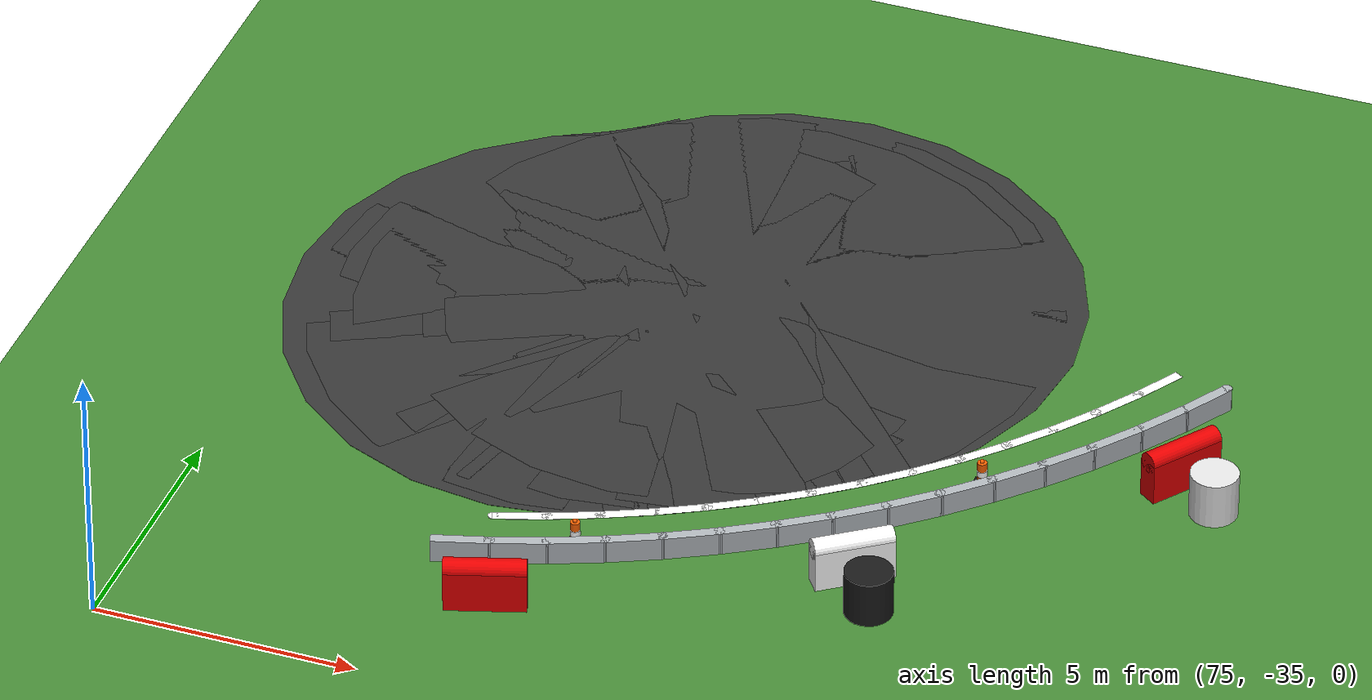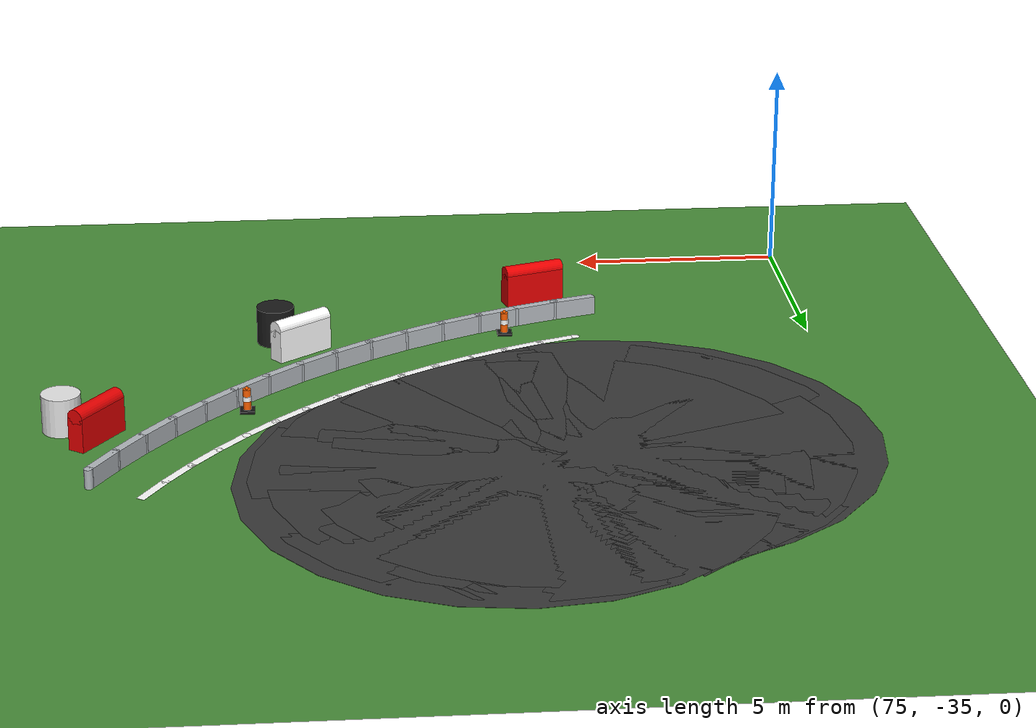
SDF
<sdf version="1.6">
 <world name="sem_silesia_ring_2026">
  <model name="ground_plane">
   <static>true</static>
   <link name="link">
    <collision name="collision">
     <geometry><plane><normal>0 0 1</normal><size>600 600</size></plane></geometry>
     <surface><friction><ode><mu>0.6</mu><mu2>0.6</mu2></ode></friction></surface>
    </collision>
    <visual name="visual">
     <geometry><plane><normal>0 0 1</normal><size>600 600</size></plane></geometry>
     <material><ambient>0.28 0.55 0.22 1</ambient><diffuse>0.28 0.55 0.22 1</diffuse></material>
    </visual>
   </link>
  </model>
  <model name="road_R_jnt13">
   <static>true</static>
   <pose>80.4796 -23.7349 0.0030 0 0 0</pose>
   <link name="link">
    <visual name="v">
     <geometry><cylinder><radius>6.0000</radius><length>0.0060</length></cylinder></geometry>
     <material><ambient>0.22 0.22 0.22 1</ambient><diffuse>0.22 0.22 0.22 1</diffuse></material>
    </visual>
    <collision name="c">
     <geometry><cylinder><radius>6.0000</radius><length>0.0060</length></cylinder></geometry>
     <surface><friction><ode><mu>0.9</mu><mu2>0.9</mu2></ode></friction></surface>
    </collision>
   </link>
  </model>
  <model name="road_R_s13">
   <static>true</static>
   <pose>80.6749 -23.6376 0.0030 0 0 0.4712</pose>
   <link name="link">
    <visual name="v">
     <geometry><box><size>0.6957 12.0000 0.0060</size></box></geometry>
     <material><ambient>0.22 0.22 0.22 1</ambient><diffuse>0.22 0.22 0.22 1</diffuse></material>
    </visual>
    <collision name="c">
     <geometry><box><size>0.6957 12.0000 0.0060</size></box></geometry>
     <surface><friction><ode><mu>0.9</mu><mu2>0.9</mu2></ode></friction></surface>
    </collision>
   </link>
  </model>
  <model name="road_R_jnt14">
   <static>true</static>
   <pose>80.8684 -23.5368 0.0030 0 0 0</pose>
   <link name="link">
    <visual name="v">
     <geometry><cylinder><radius>6.0000</radius><length>0.0060</length></cylinder></geometry>
     <material><ambient>0.22 0.22 0.22 1</ambient><diffuse>0.22 0.22 0.22 1</diffuse></material>
    </visual>
    <collision name="c">
     <geometry><cylinder><radius>6.0000</radius><length>0.0060</length></cylinder></geometry>
     <surface><friction><ode><mu>0.9</mu><mu2>0.9</mu2></ode></friction></surface>
    </collision>
   </link>
  </model>
  <model name="road_R_s14">
   <static>true</static>
   <pose>81.0601 -23.4327 0.0030 0 0 0.5061</pose>
   <link name="link">
    <visual name="v">
     <geometry><box><size>0.6957 12.0000 0.0060</size></box></geometry>
     <material><ambient>0.22 0.22 0.22 1</ambient><diffuse>0.22 0.22 0.22 1</diffuse></material>
    </visual>
    <collision name="c">
     <geometry><box><size>0.6957 12.0000 0.0060</size></box></geometry>
     <surface><friction><ode><mu>0.9</mu><mu2>0.9</mu2></ode></friction></surface>
    </collision>
   </link>
  </model>
  <model name="road_R_jnt15">
   <static>true</static>
   <pose>81.2500 -23.3253 0.0030 0 0 0</pose>
   <link name="link">
    <visual name="v">
     <geometry><cylinder><radius>6.0000</radius><length>0.0060</length></cylinder></geometry>
     <material><ambient>0.22 0.22 0.22 1</ambient><diffuse>0.22 0.22 0.22 1</diffuse></material>
    </visual>
    <collision name="c">
     <geometry><cylinder><radius>6.0000</radius><length>0.0060</length></cylinder></geometry>
     <surface><friction><ode><mu>0.9</mu><mu2>0.9</mu2></ode></friction></surface>
    </collision>
   </link>
  </model>
  <model name="road_R_s15">
   <static>true</static>
   <pose>81.4380 -23.2146 0.0030 0 0 0.5411</pose>
   <link name="link">
    <visual name="v">
     <geometry><box><size>0.6957 12.0000 0.0060</size></box></geometry>
     <material><ambient>0.22 0.22 0.22 1</ambient><diffuse>0.22 0.22 0.22 1</diffuse></material>
    </visual>
    <collision name="c">
     <geometry><box><size>0.6957 12.0000 0.0060</size></box></geometry>
     <surface><friction><ode><mu>0.9</mu><mu2>0.9</mu2></ode></friction></surface>
    </collision>
   </link>
  </model>
  <model name="road_R_jnt16">
   <static>true</static>
   <pose>81.6240 -23.1006 0.0030 0 0 0</pose>
   <link name="link">
    <visual name="v">
     <geometry><cylinder><radius>6.0000</radius><length>0.0060</length></cylinder></geometry>
     <material><ambient>0.22 0.22 0.22 1</ambient><diffuse>0.22 0.22 0.22 1</diffuse></material>
    </visual>
    <collision name="c">
     <geometry><cylinder><radius>6.0000</radius><length>0.0060</length></cylinder></geometry>
     <surface><friction><ode><mu>0.9</mu><mu2>0.9</mu2></ode></friction></surface>
    </collision>
   </link>
  </model>
  <model name="road_R_s16">
   <static>true</static>
   <pose>81.8080 -22.9834 0.0030 0 0 0.5760</pose>
   <link name="link">
    <visual name="v">
     <geometry><box><size>0.6957 12.0000 0.0060</size></box></geometry>
     <material><ambient>0.22 0.22 0.22 1</ambient><diffuse>0.22 0.22 0.22 1</diffuse></material>
    </visual>
    <collision name="c">
     <geometry><box><size>0.6957 12.0000 0.0060</size></box></geometry>
     <surface><friction><ode><mu>0.9</mu><mu2>0.9</mu2></ode></friction></surface>
    </collision>
   </link>
  </model>
  <model name="road_R_jnt17">
   <static>true</static>
   <pose>81.9899 -22.8630 0.0030 0 0 0</pose>
   <link name="link">
    <visual name="v">
     <geometry><cylinder><radius>6.0000</radius><length>0.0060</length></cylinder></geometry>
     <material><ambient>0.22 0.22 0.22 1</ambient><diffuse>0.22 0.22 0.22 1</diffuse></material>
    </visual>
    <collision name="c">
     <geometry><cylinder><radius>6.0000</radius><length>0.0060</length></cylinder></geometry>
     <surface><friction><ode><mu>0.9</mu><mu2>0.9</mu2></ode></friction></surface>
    </collision>
   </link>
  </model>
  <model name="road_R_s17">
   <static>true</static>
   <pose>82.1697 -22.7394 0.0030 0 0 0.6109</pose>
   <link name="link">
    <visual name="v">
     <geometry><box><size>0.6957 12.0000 0.0060</size></box></geometry>
     <material><ambient>0.22 0.22 0.22 1</ambient><diffuse>0.22 0.22 0.22 1</diffuse></material>
    </visual>
    <collision name="c">
     <geometry><box><size>0.6957 12.0000 0.0060</size></box></geometry>
     <surface><friction><ode><mu>0.9</mu><mu2>0.9</mu2></ode></friction></surface>
    </collision>
   </link>
  </model>
  <model name="road_R_jnt18">
   <static>true</static>
   <pose>82.3473 -22.6127 0.0030 0 0 0</pose>
   <link name="link">
    <visual name="v">
     <geometry><cylinder><radius>6.0000</radius><length>0.0060</length></cylinder></geometry>
     <material><ambient>0.22 0.22 0.22 1</ambient><diffuse>0.22 0.22 0.22 1</diffuse></material>
    </visual>
    <collision name="c">
     <geometry><cylinder><radius>6.0000</radius><length>0.0060</length></cylinder></geometry>
     <surface><friction><ode><mu>0.9</mu><mu2>0.9</mu2></ode></friction></surface>
    </collision>
   </link>
  </model>
  <model name="road_R_s18">
   <static>true</static>
   <pose>82.5227 -22.4829 0.0030 0 0 0.6458</pose>
   <link name="link">
    <visual name="v">
     <geometry><box><size>0.6957 12.0000 0.0060</size></box></geometry>
     <material><ambient>0.22 0.22 0.22 1</ambient><diffuse>0.22 0.22 0.22 1</diffuse></material>
    </visual>
    <collision name="c">
     <geometry><box><size>0.6957 12.0000 0.0060</size></box></geometry>
     <surface><friction><ode><mu>0.9</mu><mu2>0.9</mu2></ode></friction></surface>
    </collision>
   </link>
  </model>
  <model name="road_R_jnt19">
   <static>true</static>
   <pose>82.6958 -22.3501 0.0030 0 0 0</pose>
   <link name="link">
    <visual name="v">
     <geometry><cylinder><radius>6.0000</radius><length>0.0060</length></cylinder></geometry>
     <material><ambient>0.22 0.22 0.22 1</ambient><diffuse>0.22 0.22 0.22 1</diffuse></material>
    </visual>
    <collision name="c">
     <geometry><cylinder><radius>6.0000</radius><length>0.0060</length></cylinder></geometry>
     <surface><friction><ode><mu>0.9</mu><mu2>0.9</mu2></ode></friction></surface>
    </collision>
   </link>
  </model>
  <model name="road_R_s19">
   <static>true</static>
   <pose>82.8665 -22.2143 0.0030 0 0 0.6807</pose>
   <link name="link">
    <visual name="v">
     <geometry><box><size>0.6957 12.0000 0.0060</size></box></geometry>
     <material><ambient>0.22 0.22 0.22 1</ambient><diffuse>0.22 0.22 0.22 1</diffuse></material>
    </visual>
    <collision name="c">
     <geometry><box><size>0.6957 12.0000 0.0060</size></box></geometry>
     <surface><friction><ode><mu>0.9</mu><mu2>0.9</mu2></ode></friction></surface>
    </collision>
   </link>
  </model>
  <model name="road_R_jnt20">
   <static>true</static>
   <pose>83.0348 -22.0756 0.0030 0 0 0</pose>
   <link name="link">
    <visual name="v">
     <geometry><cylinder><radius>6.0000</radius><length>0.0060</length></cylinder></geometry>
     <material><ambient>0.22 0.22 0.22 1</ambient><diffuse>0.22 0.22 0.22 1</diffuse></material>
    </visual>
    <collision name="c">
     <geometry><cylinder><radius>6.0000</radius><length>0.0060</length></cylinder></geometry>
     <surface><friction><ode><mu>0.9</mu><mu2>0.9</mu2></ode></friction></surface>
    </collision>
   </link>
  </model>
  <model name="road_R_s20">
   <static>true</static>
   <pose>83.2007 -21.9339 0.0030 0 0 0.7156</pose>
   <link name="link">
    <visual name="v">
     <geometry><box><size>0.6957 12.0000 0.0060</size></box></geometry>
     <material><ambient>0.22 0.22 0.22 1</ambient><diffuse>0.22 0.22 0.22 1</diffuse></material>
    </visual>
    <collision name="c">
     <geometry><box><size>0.6957 12.0000 0.0060</size></box></geometry>
     <surface><friction><ode><mu>0.9</mu><mu2>0.9</mu2></ode></friction></surface>
    </collision>
   </link>
  </model>
  <model name="wl_Ro_jnt6">
   <static>true</static>
   <pose>80.6859 -29.9994 0.0050 0 0 0</pose>
   <link name="link">
    <visual name="v">
     <geometry><cylinder><radius>0.1000</radius><length>0.0040</length></cylinder></geometry>
     <material><ambient>1 1 1 1</ambient><diffuse>1 1 1 1</diffuse></material>
    </visual>
    <collision name="c">
     <geometry><cylinder><radius>0.1000</radius><length>0.0040</length></cylinder></geometry>
     <surface><friction><ode><mu>0.9</mu><mu2>0.9</mu2></ode></friction></surface>
    </collision>
   </link>
  </model>
  <model name="wl_Ro_s6">
   <static>true</static>
   <pose>81.1420 -29.8446 0.0050 0 0 0.3403</pose>
   <link name="link">
    <visual name="v">
     <geometry><box><size>1.0185 0.2000 0.0040</size></box></geometry>
     <material><ambient>1 1 1 1</ambient><diffuse>1 1 1 1</diffuse></material>
    </visual>
    <collision name="c">
     <geometry><box><size>1.0185 0.2000 0.0040</size></box></geometry>
     <surface><friction><ode><mu>0.9</mu><mu2>0.9</mu2></ode></friction></surface>
    </collision>
   </link>
  </model>
  <model name="wl_Ro_jnt7">
   <static>true</static>
   <pose>81.5940 -29.6779 0.0050 0 0 0</pose>
   <link name="link">
    <visual name="v">
     <geometry><cylinder><radius>0.1000</radius><length>0.0040</length></cylinder></geometry>
     <material><ambient>1 1 1 1</ambient><diffuse>1 1 1 1</diffuse></material>
    </visual>
    <collision name="c">
     <geometry><cylinder><radius>0.1000</radius><length>0.0040</length></cylinder></geometry>
     <surface><friction><ode><mu>0.9</mu><mu2>0.9</mu2></ode></friction></surface>
    </collision>
   </link>
  </model>
  <model name="wl_Ro_s7">
   <static>true</static>
   <pose>82.0414 -29.4994 0.0050 0 0 0.3927</pose>
   <link name="link">
    <visual name="v">
     <geometry><box><size>1.0185 0.2000 0.0040</size></box></geometry>
     <material><ambient>1 1 1 1</ambient><diffuse>1 1 1 1</diffuse></material>
    </visual>
    <collision name="c">
     <geometry><box><size>1.0185 0.2000 0.0040</size></box></geometry>
     <surface><friction><ode><mu>0.9</mu><mu2>0.9</mu2></ode></friction></surface>
    </collision>
   </link>
  </model>
  <model name="wl_Ro_jnt8">
   <static>true</static>
   <pose>82.4840 -29.3092 0.0050 0 0 0</pose>
   <link name="link">
    <visual name="v">
     <geometry><cylinder><radius>0.1000</radius><length>0.0040</length></cylinder></geometry>
     <material><ambient>1 1 1 1</ambient><diffuse>1 1 1 1</diffuse></material>
    </visual>
    <collision name="c">
     <geometry><cylinder><radius>0.1000</radius><length>0.0040</length></cylinder></geometry>
     <surface><friction><ode><mu>0.9</mu><mu2>0.9</mu2></ode></friction></surface>
    </collision>
   </link>
  </model>
  <model name="wl_Ro_s8">
   <static>true</static>
   <pose>82.9214 -29.1076 0.0050 0 0 0.4451</pose>
   <link name="link">
    <visual name="v">
     <geometry><box><size>1.0185 0.2000 0.0040</size></box></geometry>
     <material><ambient>1 1 1 1</ambient><diffuse>1 1 1 1</diffuse></material>
    </visual>
    <collision name="c">
     <geometry><box><size>1.0185 0.2000 0.0040</size></box></geometry>
     <surface><friction><ode><mu>0.9</mu><mu2>0.9</mu2></ode></friction></surface>
    </collision>
   </link>
  </model>
  <model name="wl_Ro_jnt9">
   <static>true</static>
   <pose>83.3534 -28.8945 0.0050 0 0 0</pose>
   <link name="link">
    <visual name="v">
     <geometry><cylinder><radius>0.1000</radius><length>0.0040</length></cylinder></geometry>
     <material><ambient>1 1 1 1</ambient><diffuse>1 1 1 1</diffuse></material>
    </visual>
    <collision name="c">
     <geometry><cylinder><radius>0.1000</radius><length>0.0040</length></cylinder></geometry>
     <surface><friction><ode><mu>0.9</mu><mu2>0.9</mu2></ode></friction></surface>
    </collision>
   </link>
  </model>
  <model name="wl_Ro_s9">
   <static>true</static>
   <pose>83.7797 -28.6702 0.0050 0 0 0.4974</pose>
   <link name="link">
    <visual name="v">
     <geometry><box><size>1.0185 0.2000 0.0040</size></box></geometry>
     <material><ambient>1 1 1 1</ambient><diffuse>1 1 1 1</diffuse></material>
    </visual>
    <collision name="c">
     <geometry><box><size>1.0185 0.2000 0.0040</size></box></geometry>
     <surface><friction><ode><mu>0.9</mu><mu2>0.9</mu2></ode></friction></surface>
    </collision>
   </link>
  </model>
  <model name="wl_Ro_jnt10">
   <static>true</static>
   <pose>84.2000 -28.4349 0.0050 0 0 0</pose>
   <link name="link">
    <visual name="v">
     <geometry><cylinder><radius>0.1000</radius><length>0.0040</length></cylinder></geometry>
     <material><ambient>1 1 1 1</ambient><diffuse>1 1 1 1</diffuse></material>
    </visual>
    <collision name="c">
     <geometry><cylinder><radius>0.1000</radius><length>0.0040</length></cylinder></geometry>
     <surface><friction><ode><mu>0.9</mu><mu2>0.9</mu2></ode></friction></surface>
    </collision>
   </link>
  </model>
  <model name="wl_Ro_s10">
   <static>true</static>
   <pose>84.6140 -28.1886 0.0050 0 0 0.5498</pose>
   <link name="link">
    <visual name="v">
     <geometry><box><size>1.0185 0.2000 0.0040</size></box></geometry>
     <material><ambient>1 1 1 1</ambient><diffuse>1 1 1 1</diffuse></material>
    </visual>
    <collision name="c">
     <geometry><box><size>1.0185 0.2000 0.0040</size></box></geometry>
     <surface><friction><ode><mu>0.9</mu><mu2>0.9</mu2></ode></friction></surface>
    </collision>
   </link>
  </model>
  <model name="wl_Ro_jnt11">
   <static>true</static>
   <pose>85.0214 -27.9315 0.0050 0 0 0</pose>
   <link name="link">
    <visual name="v">
     <geometry><cylinder><radius>0.1000</radius><length>0.0040</length></cylinder></geometry>
     <material><ambient>1 1 1 1</ambient><diffuse>1 1 1 1</diffuse></material>
    </visual>
    <collision name="c">
     <geometry><cylinder><radius>0.1000</radius><length>0.0040</length></cylinder></geometry>
     <surface><friction><ode><mu>0.9</mu><mu2>0.9</mu2></ode></friction></surface>
    </collision>
   </link>
  </model>
  <model name="wl_Ro_s11">
   <static>true</static>
   <pose>85.4219 -27.6639 0.0050 0 0 0.6021</pose>
   <link name="link">
    <visual name="v">
     <geometry><box><size>1.0185 0.2000 0.0040</size></box></geometry>
     <material><ambient>1 1 1 1</ambient><diffuse>1 1 1 1</diffuse></material>
    </visual>
    <collision name="c">
     <geometry><box><size>1.0185 0.2000 0.0040</size></box></geometry>
     <surface><friction><ode><mu>0.9</mu><mu2>0.9</mu2></ode></friction></surface>
    </collision>
   </link>
  </model>
  <model name="wl_Ro_jnt12">
   <static>true</static>
   <pose>85.8152 -27.3859 0.0050 0 0 0</pose>
   <link name="link">
    <visual name="v">
     <geometry><cylinder><radius>0.1000</radius><length>0.0040</length></cylinder></geometry>
     <material><ambient>1 1 1 1</ambient><diffuse>1 1 1 1</diffuse></material>
    </visual>
    <collision name="c">
     <geometry><cylinder><radius>0.1000</radius><length>0.0040</length></cylinder></geometry>
     <surface><friction><ode><mu>0.9</mu><mu2>0.9</mu2></ode></friction></surface>
    </collision>
   </link>
  </model>
  <model name="wl_Ro_s12">
   <static>true</static>
   <pose>86.2012 -27.0977 0.0050 0 0 0.6545</pose>
   <link name="link">
    <visual name="v">
     <geometry><box><size>1.0185 0.2000 0.0040</size></box></geometry>
     <material><ambient>1 1 1 1</ambient><diffuse>1 1 1 1</diffuse></material>
    </visual>
    <collision name="c">
     <geometry><box><size>1.0185 0.2000 0.0040</size></box></geometry>
     <surface><friction><ode><mu>0.9</mu><mu2>0.9</mu2></ode></friction></surface>
    </collision>
   </link>
  </model>
  <model name="wl_Ro_jnt13">
   <static>true</static>
   <pose>86.5795 -26.7995 0.0050 0 0 0</pose>
   <link name="link">
    <visual name="v">
     <geometry><cylinder><radius>0.1000</radius><length>0.0040</length></cylinder></geometry>
     <material><ambient>1 1 1 1</ambient><diffuse>1 1 1 1</diffuse></material>
    </visual>
    <collision name="c">
     <geometry><cylinder><radius>0.1000</radius><length>0.0040</length></cylinder></geometry>
     <surface><friction><ode><mu>0.9</mu><mu2>0.9</mu2></ode></friction></surface>
    </collision>
   </link>
  </model>
  <model name="wl_Ro_s13">
   <static>true</static>
   <pose>86.9498 -26.4915 0.0050 0 0 0.7069</pose>
   <link name="link">
    <visual name="v">
     <geometry><box><size>1.0185 0.2000 0.0040</size></box></geometry>
     <material><ambient>1 1 1 1</ambient><diffuse>1 1 1 1</diffuse></material>
    </visual>
    <collision name="c">
     <geometry><box><size>1.0185 0.2000 0.0040</size></box></geometry>
     <surface><friction><ode><mu>0.9</mu><mu2>0.9</mu2></ode></friction></surface>
    </collision>
   </link>
  </model>
  <model name="wl_Ro_jnt14">
   <static>true</static>
   <pose>87.3120 -26.1739 0.0050 0 0 0</pose>
   <link name="link">
    <visual name="v">
     <geometry><cylinder><radius>0.1000</radius><length>0.0040</length></cylinder></geometry>
     <material><ambient>1 1 1 1</ambient><diffuse>1 1 1 1</diffuse></material>
    </visual>
    <collision name="c">
     <geometry><cylinder><radius>0.1000</radius><length>0.0040</length></cylinder></geometry>
     <surface><friction><ode><mu>0.9</mu><mu2>0.9</mu2></ode></friction></surface>
    </collision>
   </link>
  </model>
  <model name="wl_Ro_s14">
   <static>true</static>
   <pose>87.6657 -25.8469 0.0050 0 0 0.7592</pose>
   <link name="link">
    <visual name="v">
     <geometry><box><size>1.0185 0.2000 0.0040</size></box></geometry>
     <material><ambient>1 1 1 1</ambient><diffuse>1 1 1 1</diffuse></material>
    </visual>
    <collision name="c">
     <geometry><box><size>1.0185 0.2000 0.0040</size></box></geometry>
     <surface><friction><ode><mu>0.9</mu><mu2>0.9</mu2></ode></friction></surface>
    </collision>
   </link>
  </model>
  <model name="wl_Ro_jnt15">
   <static>true</static>
   <pose>88.0108 -25.5108 0.0050 0 0 0</pose>
   <link name="link">
    <visual name="v">
     <geometry><cylinder><radius>0.1000</radius><length>0.0040</length></cylinder></geometry>
     <material><ambient>1 1 1 1</ambient><diffuse>1 1 1 1</diffuse></material>
    </visual>
    <collision name="c">
     <geometry><cylinder><radius>0.1000</radius><length>0.0040</length></cylinder></geometry>
     <surface><friction><ode><mu>0.9</mu><mu2>0.9</mu2></ode></friction></surface>
    </collision>
   </link>
  </model>
  <model name="wl_Ro_s15">
   <static>true</static>
   <pose>88.3469 -25.1657 0.0050 0 0 0.8116</pose>
   <link name="link">
    <visual name="v">
     <geometry><box><size>1.0185 0.2000 0.0040</size></box></geometry>
     <material><ambient>1 1 1 1</ambient><diffuse>1 1 1 1</diffuse></material>
    </visual>
    <collision name="c">
     <geometry><box><size>1.0185 0.2000 0.0040</size></box></geometry>
     <surface><friction><ode><mu>0.9</mu><mu2>0.9</mu2></ode></friction></surface>
    </collision>
   </link>
  </model>
  <model name="wl_Ro_jnt16">
   <static>true</static>
   <pose>88.6739 -24.8120 0.0050 0 0 0</pose>
   <link name="link">
    <visual name="v">
     <geometry><cylinder><radius>0.1000</radius><length>0.0040</length></cylinder></geometry>
     <material><ambient>1 1 1 1</ambient><diffuse>1 1 1 1</diffuse></material>
    </visual>
    <collision name="c">
     <geometry><cylinder><radius>0.1000</radius><length>0.0040</length></cylinder></geometry>
     <surface><friction><ode><mu>0.9</mu><mu2>0.9</mu2></ode></friction></surface>
    </collision>
   </link>
  </model>
  <model name="wl_Ro_s16">
   <static>true</static>
   <pose>88.9915 -24.4498 0.0050 0 0 0.8639</pose>
   <link name="link">
    <visual name="v">
     <geometry><box><size>1.0185 0.2000 0.0040</size></box></geometry>
     <material><ambient>1 1 1 1</ambient><diffuse>1 1 1 1</diffuse></material>
    </visual>
    <collision name="c">
     <geometry><box><size>1.0185 0.2000 0.0040</size></box></geometry>
     <surface><friction><ode><mu>0.9</mu><mu2>0.9</mu2></ode></friction></surface>
    </collision>
   </link>
  </model>
  <model name="wl_Ro_jnt17">
   <static>true</static>
   <pose>89.2995 -24.0795 0.0050 0 0 0</pose>
   <link name="link">
    <visual name="v">
     <geometry><cylinder><radius>0.1000</radius><length>0.0040</length></cylinder></geometry>
     <material><ambient>1 1 1 1</ambient><diffuse>1 1 1 1</diffuse></material>
    </visual>
    <collision name="c">
     <geometry><cylinder><radius>0.1000</radius><length>0.0040</length></cylinder></geometry>
     <surface><friction><ode><mu>0.9</mu><mu2>0.9</mu2></ode></friction></surface>
    </collision>
   </link>
  </model>
  <model name="wl_Ro_s17">
   <static>true</static>
   <pose>89.5977 -23.7012 0.0050 0 0 0.9163</pose>
   <link name="link">
    <visual name="v">
     <geometry><box><size>1.0185 0.2000 0.0040</size></box></geometry>
     <material><ambient>1 1 1 1</ambient><diffuse>1 1 1 1</diffuse></material>
    </visual>
    <collision name="c">
     <geometry><box><size>1.0185 0.2000 0.0040</size></box></geometry>
     <surface><friction><ode><mu>0.9</mu><mu2>0.9</mu2></ode></friction></surface>
    </collision>
   </link>
  </model>
  <model name="wl_Ro_jnt18">
   <static>true</static>
   <pose>89.8859 -23.3152 0.0050 0 0 0</pose>
   <link name="link">
    <visual name="v">
     <geometry><cylinder><radius>0.1000</radius><length>0.0040</length></cylinder></geometry>
     <material><ambient>1 1 1 1</ambient><diffuse>1 1 1 1</diffuse></material>
    </visual>
    <collision name="c">
     <geometry><cylinder><radius>0.1000</radius><length>0.0040</length></cylinder></geometry>
     <surface><friction><ode><mu>0.9</mu><mu2>0.9</mu2></ode></friction></surface>
    </collision>
   </link>
  </model>
  <model name="wl_Ro_s18">
   <static>true</static>
   <pose>90.1639 -22.9219 0.0050 0 0 0.9687</pose>
   <link name="link">
    <visual name="v">
     <geometry><box><size>1.0185 0.2000 0.0040</size></box></geometry>
     <material><ambient>1 1 1 1</ambient><diffuse>1 1 1 1</diffuse></material>
    </visual>
    <collision name="c">
     <geometry><box><size>1.0185 0.2000 0.0040</size></box></geometry>
     <surface><friction><ode><mu>0.9</mu><mu2>0.9</mu2></ode></friction></surface>
    </collision>
   </link>
  </model>
  <model name="wl_Ro_jnt19">
   <static>true</static>
   <pose>90.4315 -22.5214 0.0050 0 0 0</pose>
   <link name="link">
    <visual name="v">
     <geometry><cylinder><radius>0.1000</radius><length>0.0040</length></cylinder></geometry>
     <material><ambient>1 1 1 1</ambient><diffuse>1 1 1 1</diffuse></material>
    </visual>
    <collision name="c">
     <geometry><cylinder><radius>0.1000</radius><length>0.0040</length></cylinder></geometry>
     <surface><friction><ode><mu>0.9</mu><mu2>0.9</mu2></ode></friction></surface>
    </collision>
   </link>
  </model>
  <model name="wl_Ro_s19">
   <static>true</static>
   <pose>90.6886 -22.1140 0.0050 0 0 1.0210</pose>
   <link name="link">
    <visual name="v">
     <geometry><box><size>1.0185 0.2000 0.0040</size></box></geometry>
     <material><ambient>1 1 1 1</ambient><diffuse>1 1 1 1</diffuse></material>
    </visual>
    <collision name="c">
     <geometry><box><size>1.0185 0.2000 0.0040</size></box></geometry>
     <surface><friction><ode><mu>0.9</mu><mu2>0.9</mu2></ode></friction></surface>
    </collision>
   </link>
  </model>
  <model name="arm_Ro_s5">
   <static>true</static>
   <pose>80.5951 -31.3887 0.2250 0 0 0.2880</pose>
   <link name="link">
    <visual name="v">
     <geometry><box><size>1.0866 0.2000 0.4500</size></box></geometry>
     <material><ambient>0.70 0.72 0.74 1</ambient><diffuse>0.70 0.72 0.74 1</diffuse></material>
    </visual>
    <collision name="c">
     <geometry><box><size>1.0866 0.2000 0.4500</size></box></geometry>
     <surface><friction><ode><mu>0.9</mu><mu2>0.9</mu2></ode></friction></surface>
    </collision>
   </link>
  </model>
  <model name="arm_Ro_jnt6">
   <static>true</static>
   <pose>81.0876 -31.2358 0.2250 0 0 0</pose>
   <link name="link">
    <visual name="v">
     <geometry><cylinder><radius>0.1000</radius><length>0.4500</length></cylinder></geometry>
     <material><ambient>0.70 0.72 0.74 1</ambient><diffuse>0.70 0.72 0.74 1</diffuse></material>
    </visual>
    <collision name="c">
     <geometry><cylinder><radius>0.1000</radius><length>0.4500</length></cylinder></geometry>
     <surface><friction><ode><mu>0.9</mu><mu2>0.9</mu2></ode></friction></surface>
    </collision>
   </link>
  </model>
  <model name="arm_Ro_s6">
   <static>true</static>
   <pose>81.5760 -31.0700 0.2250 0 0 0.3403</pose>
   <link name="link">
    <visual name="v">
     <geometry><box><size>1.0866 0.2000 0.4500</size></box></geometry>
     <material><ambient>0.70 0.72 0.74 1</ambient><diffuse>0.70 0.72 0.74 1</diffuse></material>
    </visual>
    <collision name="c">
     <geometry><box><size>1.0866 0.2000 0.4500</size></box></geometry>
     <surface><friction><ode><mu>0.9</mu><mu2>0.9</mu2></ode></friction></surface>
    </collision>
   </link>
  </model>
  <model name="arm_Ro_jnt7">
   <static>true</static>
   <pose>82.0598 -30.8915 0.2250 0 0 0</pose>
   <link name="link">
    <visual name="v">
     <geometry><cylinder><radius>0.1000</radius><length>0.4500</length></cylinder></geometry>
     <material><ambient>0.70 0.72 0.74 1</ambient><diffuse>0.70 0.72 0.74 1</diffuse></material>
    </visual>
    <collision name="c">
     <geometry><cylinder><radius>0.1000</radius><length>0.4500</length></cylinder></geometry>
     <surface><friction><ode><mu>0.9</mu><mu2>0.9</mu2></ode></friction></surface>
    </collision>
   </link>
  </model>
  <model name="arm_Ro_s7">
   <static>true</static>
   <pose>82.5389 -30.7004 0.2250 0 0 0.3927</pose>
   <link name="link">
    <visual name="v">
     <geometry><box><size>1.0866 0.2000 0.4500</size></box></geometry>
     <material><ambient>0.70 0.72 0.74 1</ambient><diffuse>0.70 0.72 0.74 1</diffuse></material>
    </visual>
    <collision name="c">
     <geometry><box><size>1.0866 0.2000 0.4500</size></box></geometry>
     <surface><friction><ode><mu>0.9</mu><mu2>0.9</mu2></ode></friction></surface>
    </collision>
   </link>
  </model>
  <model name="arm_Ro_jnt8">
   <static>true</static>
   <pose>83.0127 -30.4968 0.2250 0 0 0</pose>
   <link name="link">
    <visual name="v">
     <geometry><cylinder><radius>0.1000</radius><length>0.4500</length></cylinder></geometry>
     <material><ambient>0.70 0.72 0.74 1</ambient><diffuse>0.70 0.72 0.74 1</diffuse></material>
    </visual>
    <collision name="c">
     <geometry><cylinder><radius>0.1000</radius><length>0.4500</length></cylinder></geometry>
     <surface><friction><ode><mu>0.9</mu><mu2>0.9</mu2></ode></friction></surface>
    </collision>
   </link>
  </model>
  <model name="arm_Ro_s8">
   <static>true</static>
   <pose>83.4811 -30.2809 0.2250 0 0 0.4451</pose>
   <link name="link">
    <visual name="v">
     <geometry><box><size>1.0866 0.2000 0.4500</size></box></geometry>
     <material><ambient>0.70 0.72 0.74 1</ambient><diffuse>0.70 0.72 0.74 1</diffuse></material>
    </visual>
    <collision name="c">
     <geometry><box><size>1.0866 0.2000 0.4500</size></box></geometry>
     <surface><friction><ode><mu>0.9</mu><mu2>0.9</mu2></ode></friction></surface>
    </collision>
   </link>
  </model>
  <model name="arm_Ro_jnt9">
   <static>true</static>
   <pose>83.9436 -30.0528 0.2250 0 0 0</pose>
   <link name="link">
    <visual name="v">
     <geometry><cylinder><radius>0.1000</radius><length>0.4500</length></cylinder></geometry>
     <material><ambient>0.70 0.72 0.74 1</ambient><diffuse>0.70 0.72 0.74 1</diffuse></material>
    </visual>
    <collision name="c">
     <geometry><cylinder><radius>0.1000</radius><length>0.4500</length></cylinder></geometry>
     <surface><friction><ode><mu>0.9</mu><mu2>0.9</mu2></ode></friction></surface>
    </collision>
   </link>
  </model>
  <model name="arm_Ro_s9">
   <static>true</static>
   <pose>84.4000 -29.8127 0.2250 0 0 0.4974</pose>
   <link name="link">
    <visual name="v">
     <geometry><box><size>1.0866 0.2000 0.4500</size></box></geometry>
     <material><ambient>0.70 0.72 0.74 1</ambient><diffuse>0.70 0.72 0.74 1</diffuse></material>
    </visual>
    <collision name="c">
     <geometry><box><size>1.0866 0.2000 0.4500</size></box></geometry>
     <surface><friction><ode><mu>0.9</mu><mu2>0.9</mu2></ode></friction></surface>
    </collision>
   </link>
  </model>
  <model name="arm_Ro_jnt10">
   <static>true</static>
   <pose>84.8500 -29.5607 0.2250 0 0 0</pose>
   <link name="link">
    <visual name="v">
     <geometry><cylinder><radius>0.1000</radius><length>0.4500</length></cylinder></geometry>
     <material><ambient>0.70 0.72 0.74 1</ambient><diffuse>0.70 0.72 0.74 1</diffuse></material>
    </visual>
    <collision name="c">
     <geometry><cylinder><radius>0.1000</radius><length>0.4500</length></cylinder></geometry>
     <surface><friction><ode><mu>0.9</mu><mu2>0.9</mu2></ode></friction></surface>
    </collision>
   </link>
  </model>
  <model name="arm_Ro_s10">
   <static>true</static>
   <pose>85.2932 -29.2970 0.2250 0 0 0.5498</pose>
   <link name="link">
    <visual name="v">
     <geometry><box><size>1.0866 0.2000 0.4500</size></box></geometry>
     <material><ambient>0.70 0.72 0.74 1</ambient><diffuse>0.70 0.72 0.74 1</diffuse></material>
    </visual>
    <collision name="c">
     <geometry><box><size>1.0866 0.2000 0.4500</size></box></geometry>
     <surface><friction><ode><mu>0.9</mu><mu2>0.9</mu2></ode></friction></surface>
    </collision>
   </link>
  </model>
  <model name="arm_Ro_jnt11">
   <static>true</static>
   <pose>85.7294 -29.0218 0.2250 0 0 0</pose>
   <link name="link">
    <visual name="v">
     <geometry><cylinder><radius>0.1000</radius><length>0.4500</length></cylinder></geometry>
     <material><ambient>0.70 0.72 0.74 1</ambient><diffuse>0.70 0.72 0.74 1</diffuse></material>
    </visual>
    <collision name="c">
     <geometry><cylinder><radius>0.1000</radius><length>0.4500</length></cylinder></geometry>
     <surface><friction><ode><mu>0.9</mu><mu2>0.9</mu2></ode></friction></surface>
    </collision>
   </link>
  </model>
  <model name="arm_Ro_s11">
   <static>true</static>
   <pose>86.1582 -28.7353 0.2250 0 0 0.6021</pose>
   <link name="link">
    <visual name="v">
     <geometry><box><size>1.0866 0.2000 0.4500</size></box></geometry>
     <material><ambient>0.70 0.72 0.74 1</ambient><diffuse>0.70 0.72 0.74 1</diffuse></material>
    </visual>
    <collision name="c">
     <geometry><box><size>1.0866 0.2000 0.4500</size></box></geometry>
     <surface><friction><ode><mu>0.9</mu><mu2>0.9</mu2></ode></friction></surface>
    </collision>
   </link>
  </model>
  <model name="arm_Ro_jnt12">
   <static>true</static>
   <pose>86.5794 -28.4376 0.2250 0 0 0</pose>
   <link name="link">
    <visual name="v">
     <geometry><cylinder><radius>0.1000</radius><length>0.4500</length></cylinder></geometry>
     <material><ambient>0.70 0.72 0.74 1</ambient><diffuse>0.70 0.72 0.74 1</diffuse></material>
    </visual>
    <collision name="c">
     <geometry><cylinder><radius>0.1000</radius><length>0.4500</length></cylinder></geometry>
     <surface><friction><ode><mu>0.9</mu><mu2>0.9</mu2></ode></friction></surface>
    </collision>
   </link>
  </model>
  <model name="arm_Ro_s12">
   <static>true</static>
   <pose>86.9926 -28.1291 0.2250 0 0 0.6545</pose>
   <link name="link">
    <visual name="v">
     <geometry><box><size>1.0866 0.2000 0.4500</size></box></geometry>
     <material><ambient>0.70 0.72 0.74 1</ambient><diffuse>0.70 0.72 0.74 1</diffuse></material>
    </visual>
    <collision name="c">
     <geometry><box><size>1.0866 0.2000 0.4500</size></box></geometry>
     <surface><friction><ode><mu>0.9</mu><mu2>0.9</mu2></ode></friction></surface>
    </collision>
   </link>
  </model>
  <model name="arm_Ro_jnt13">
   <static>true</static>
   <pose>87.3976 -27.8098 0.2250 0 0 0</pose>
   <link name="link">
    <visual name="v">
     <geometry><cylinder><radius>0.1000</radius><length>0.4500</length></cylinder></geometry>
     <material><ambient>0.70 0.72 0.74 1</ambient><diffuse>0.70 0.72 0.74 1</diffuse></material>
    </visual>
    <collision name="c">
     <geometry><cylinder><radius>0.1000</radius><length>0.4500</length></cylinder></geometry>
     <surface><friction><ode><mu>0.9</mu><mu2>0.9</mu2></ode></friction></surface>
    </collision>
   </link>
  </model>
  <model name="arm_Ro_s13">
   <static>true</static>
   <pose>87.7941 -27.4800 0.2250 0 0 0.7069</pose>
   <link name="link">
    <visual name="v">
     <geometry><box><size>1.0866 0.2000 0.4500</size></box></geometry>
     <material><ambient>0.70 0.72 0.74 1</ambient><diffuse>0.70 0.72 0.74 1</diffuse></material>
    </visual>
    <collision name="c">
     <geometry><box><size>1.0866 0.2000 0.4500</size></box></geometry>
     <surface><friction><ode><mu>0.9</mu><mu2>0.9</mu2></ode></friction></surface>
    </collision>
   </link>
  </model>
  <model name="arm_Ro_jnt14">
   <static>true</static>
   <pose>88.1819 -27.1400 0.2250 0 0 0</pose>
   <link name="link">
    <visual name="v">
     <geometry><cylinder><radius>0.1000</radius><length>0.4500</length></cylinder></geometry>
     <material><ambient>0.70 0.72 0.74 1</ambient><diffuse>0.70 0.72 0.74 1</diffuse></material>
    </visual>
    <collision name="c">
     <geometry><cylinder><radius>0.1000</radius><length>0.4500</length></cylinder></geometry>
     <surface><friction><ode><mu>0.9</mu><mu2>0.9</mu2></ode></friction></surface>
    </collision>
   </link>
  </model>
  <model name="arm_Ro_s14">
   <static>true</static>
   <pose>88.5606 -26.7899 0.2250 0 0 0.7592</pose>
   <link name="link">
    <visual name="v">
     <geometry><box><size>1.0866 0.2000 0.4500</size></box></geometry>
     <material><ambient>0.70 0.72 0.74 1</ambient><diffuse>0.70 0.72 0.74 1</diffuse></material>
    </visual>
    <collision name="c">
     <geometry><box><size>1.0866 0.2000 0.4500</size></box></geometry>
     <surface><friction><ode><mu>0.9</mu><mu2>0.9</mu2></ode></friction></surface>
    </collision>
   </link>
  </model>
  <model name="arm_Ro_jnt15">
   <static>true</static>
   <pose>88.9300 -26.4300 0.2250 0 0 0</pose>
   <link name="link">
    <visual name="v">
     <geometry><cylinder><radius>0.1000</radius><length>0.4500</length></cylinder></geometry>
     <material><ambient>0.70 0.72 0.74 1</ambient><diffuse>0.70 0.72 0.74 1</diffuse></material>
    </visual>
    <collision name="c">
     <geometry><cylinder><radius>0.1000</radius><length>0.4500</length></cylinder></geometry>
     <surface><friction><ode><mu>0.9</mu><mu2>0.9</mu2></ode></friction></surface>
    </collision>
   </link>
  </model>
  <model name="arm_Ro_s15">
   <static>true</static>
   <pose>89.2899 -26.0606 0.2250 0 0 0.8116</pose>
   <link name="link">
    <visual name="v">
     <geometry><box><size>1.0866 0.2000 0.4500</size></box></geometry>
     <material><ambient>0.70 0.72 0.74 1</ambient><diffuse>0.70 0.72 0.74 1</diffuse></material>
    </visual>
    <collision name="c">
     <geometry><box><size>1.0866 0.2000 0.4500</size></box></geometry>
     <surface><friction><ode><mu>0.9</mu><mu2>0.9</mu2></ode></friction></surface>
    </collision>
   </link>
  </model>
  <model name="arm_Ro_jnt16">
   <static>true</static>
   <pose>89.6400 -25.6819 0.2250 0 0 0</pose>
   <link name="link">
    <visual name="v">
     <geometry><cylinder><radius>0.1000</radius><length>0.4500</length></cylinder></geometry>
     <material><ambient>0.70 0.72 0.74 1</ambient><diffuse>0.70 0.72 0.74 1</diffuse></material>
    </visual>
    <collision name="c">
     <geometry><cylinder><radius>0.1000</radius><length>0.4500</length></cylinder></geometry>
     <surface><friction><ode><mu>0.9</mu><mu2>0.9</mu2></ode></friction></surface>
    </collision>
   </link>
  </model>
  <model name="arm_Ro_s16">
   <static>true</static>
   <pose>89.9800 -25.2941 0.2250 0 0 0.8639</pose>
   <link name="link">
    <visual name="v">
     <geometry><box><size>1.0866 0.2000 0.4500</size></box></geometry>
     <material><ambient>0.70 0.72 0.74 1</ambient><diffuse>0.70 0.72 0.74 1</diffuse></material>
    </visual>
    <collision name="c">
     <geometry><box><size>1.0866 0.2000 0.4500</size></box></geometry>
     <surface><friction><ode><mu>0.9</mu><mu2>0.9</mu2></ode></friction></surface>
    </collision>
   </link>
  </model>
  <model name="arm_Ro_jnt17">
   <static>true</static>
   <pose>90.3098 -24.8976 0.2250 0 0 0</pose>
   <link name="link">
    <visual name="v">
     <geometry><cylinder><radius>0.1000</radius><length>0.4500</length></cylinder></geometry>
     <material><ambient>0.70 0.72 0.74 1</ambient><diffuse>0.70 0.72 0.74 1</diffuse></material>
    </visual>
    <collision name="c">
     <geometry><cylinder><radius>0.1000</radius><length>0.4500</length></cylinder></geometry>
     <surface><friction><ode><mu>0.9</mu><mu2>0.9</mu2></ode></friction></surface>
    </collision>
   </link>
  </model>
  <model name="arm_Ro_s17">
   <static>true</static>
   <pose>90.6291 -24.4926 0.2250 0 0 0.9163</pose>
   <link name="link">
    <visual name="v">
     <geometry><box><size>1.0866 0.2000 0.4500</size></box></geometry>
     <material><ambient>0.70 0.72 0.74 1</ambient><diffuse>0.70 0.72 0.74 1</diffuse></material>
    </visual>
    <collision name="c">
     <geometry><box><size>1.0866 0.2000 0.4500</size></box></geometry>
     <surface><friction><ode><mu>0.9</mu><mu2>0.9</mu2></ode></friction></surface>
    </collision>
   </link>
  </model>
  <model name="arm_Ro_jnt18">
   <static>true</static>
   <pose>90.9376 -24.0794 0.2250 0 0 0</pose>
   <link name="link">
    <visual name="v">
     <geometry><cylinder><radius>0.1000</radius><length>0.4500</length></cylinder></geometry>
     <material><ambient>0.70 0.72 0.74 1</ambient><diffuse>0.70 0.72 0.74 1</diffuse></material>
    </visual>
    <collision name="c">
     <geometry><cylinder><radius>0.1000</radius><length>0.4500</length></cylinder></geometry>
     <surface><friction><ode><mu>0.9</mu><mu2>0.9</mu2></ode></friction></surface>
    </collision>
   </link>
  </model>
  <model name="arm_Ro_s18">
   <static>true</static>
   <pose>91.2353 -23.6582 0.2250 0 0 0.9687</pose>
   <link name="link">
    <visual name="v">
     <geometry><box><size>1.0866 0.2000 0.4500</size></box></geometry>
     <material><ambient>0.70 0.72 0.74 1</ambient><diffuse>0.70 0.72 0.74 1</diffuse></material>
    </visual>
    <collision name="c">
     <geometry><box><size>1.0866 0.2000 0.4500</size></box></geometry>
     <surface><friction><ode><mu>0.9</mu><mu2>0.9</mu2></ode></friction></surface>
    </collision>
   </link>
  </model>
  <model name="arm_Ro_jnt19">
   <static>true</static>
   <pose>91.5218 -23.2294 0.2250 0 0 0</pose>
   <link name="link">
    <visual name="v">
     <geometry><cylinder><radius>0.1000</radius><length>0.4500</length></cylinder></geometry>
     <material><ambient>0.70 0.72 0.74 1</ambient><diffuse>0.70 0.72 0.74 1</diffuse></material>
    </visual>
    <collision name="c">
     <geometry><cylinder><radius>0.1000</radius><length>0.4500</length></cylinder></geometry>
     <surface><friction><ode><mu>0.9</mu><mu2>0.9</mu2></ode></friction></surface>
    </collision>
   </link>
  </model>
  <model name="arm_Ro_s19">
   <static>true</static>
   <pose>91.7970 -22.7932 0.2250 0 0 1.0210</pose>
   <link name="link">
    <visual name="v">
     <geometry><box><size>1.0866 0.2000 0.4500</size></box></geometry>
     <material><ambient>0.70 0.72 0.74 1</ambient><diffuse>0.70 0.72 0.74 1</diffuse></material>
    </visual>
    <collision name="c">
     <geometry><box><size>1.0866 0.2000 0.4500</size></box></geometry>
     <surface><friction><ode><mu>0.9</mu><mu2>0.9</mu2></ode></friction></surface>
    </collision>
   </link>
  </model>
  <model name="arm_Ro_jnt20">
   <static>true</static>
   <pose>92.0607 -22.3500 0.2250 0 0 0</pose>
   <link name="link">
    <visual name="v">
     <geometry><cylinder><radius>0.1000</radius><length>0.4500</length></cylinder></geometry>
     <material><ambient>0.70 0.72 0.74 1</ambient><diffuse>0.70 0.72 0.74 1</diffuse></material>
    </visual>
    <collision name="c">
     <geometry><cylinder><radius>0.1000</radius><length>0.4500</length></cylinder></geometry>
     <surface><friction><ode><mu>0.9</mu><mu2>0.9</mu2></ode></friction></surface>
    </collision>
   </link>
  </model>
  <model name="p_bar_R_arc_0">
   <static>true</static>
   <pose>81.4894 -32.4722 0.4 0 0 0.3142</pose>
   <link name="link">
    <visual name="v">
     <geometry><box><size>1.5 0.4 0.8</size></box></geometry>
     <material><ambient>0.9 0 0 1</ambient><diffuse>0.9 0 0 1</diffuse></material>
    </visual>
    <visual name="top_round">
     <pose>0 0 0.4 0 1.5708 0</pose>
     <geometry><cylinder><radius>0.2</radius><length>1.5</length></cylinder></geometry>
     <material><ambient>0.9 0 0 1</ambient><diffuse>0.9 0 0 1</diffuse></material>
    </visual>
    <collision name="c"><geometry><box><size>1.5 0.4 0.8</size></box></geometry></collision>
   </link>
  </model>
  <model name="p_bar_R_arc_1">
   <static>true</static>
   <pose>87.3435 -29.4894 0.4 0 0 0.6283</pose>
   <link name="link">
    <visual name="v">
     <geometry><box><size>1.5 0.4 0.8</size></box></geometry>
     <material><ambient>1 1 1 1</ambient><diffuse>1 1 1 1</diffuse></material>
    </visual>
    <visual name="top_round">
     <pose>0 0 0.4 0 1.5708 0</pose>
     <geometry><cylinder><radius>0.2</radius><length>1.5</length></cylinder></geometry>
     <material><ambient>1 1 1 1</ambient><diffuse>1 1 1 1</diffuse></material>
    </visual>
    <collision name="c"><geometry><box><size>1.5 0.4 0.8</size></box></geometry></collision>
   </link>
  </model>
  <model name="p_bar_R_arc_2">
   <static>true</static>
   <pose>91.9894 -24.8435 0.4 0 0 0.9425</pose>
   <link name="link">
    <visual name="v">
     <geometry><box><size>1.5 0.4 0.8</size></box></geometry>
     <material><ambient>0.9 0 0 1</ambient><diffuse>0.9 0 0 1</diffuse></material>
    </visual>
    <visual name="top_round">
     <pose>0 0 0.4 0 1.5708 0</pose>
     <geometry><cylinder><radius>0.2</radius><length>1.5</length></cylinder></geometry>
     <material><ambient>0.9 0 0 1</ambient><diffuse>0.9 0 0 1</diffuse></material>
    </visual>
    <collision name="c"><geometry><box><size>1.5 0.4 0.8</size></box></geometry></collision>
   </link>
  </model>
  <model name="cn_Ro_1">
   <static>true</static>
   <pose>82.3858 -30.3309 0 0 0 0</pose>
   <link name="link">
    <visual name="base">
     <pose>0 0 0.03 0 0 0</pose>
     <geometry><box><size>0.35 0.35 0.06</size></box></geometry>
     <material><ambient>0.08 0.08 0.08 1</ambient><diffuse>0.08 0.08 0.08 1</diffuse></material>
    </visual>
    <visual name="body">
     <pose>0 0 0.30 0 0 0</pose>
     <geometry><cylinder><radius>0.09</radius><length>0.50</length></cylinder></geometry>
     <material><ambient>1.0 0.38 0.0 1</ambient><diffuse>1.0 0.38 0.0 1</diffuse></material>
    </visual>
    <visual name="stripe">
     <pose>0 0 0.32 0 0 0</pose>
     <geometry><cylinder><radius>0.095</radius><length>0.12</length></cylinder></geometry>
     <material><ambient>1 1 1 1</ambient><diffuse>1 1 1 1</diffuse></material>
    </visual>
    <visual name="tip">
     <pose>0 0 0.57 0 0 0</pose>
     <geometry><sphere><radius>0.04</radius></sphere></geometry>
     <material><ambient>1.0 0.38 0.0 1</ambient><diffuse>1.0 0.38 0.0 1</diffuse></material>
    </visual>
    <collision name="c">
     <pose>0 0 0.28 0 0 0</pose>
     <geometry><cylinder><radius>0.09</radius><length>0.56</length></cylinder></geometry>
    </collision>
   </link>
  </model>
  <model name="cn_Ro_2">
   <static>true</static>
   <pose>88.6472 -26.1472 0 0 0 0</pose>
   <link name="link">
    <visual name="base">
     <pose>0 0 0.03 0 0 0</pose>
     <geometry><box><size>0.35 0.35 0.06</size></box></geometry>
     <material><ambient>0.08 0.08 0.08 1</ambient><diffuse>0.08 0.08 0.08 1</diffuse></material>
    </visual>
    <visual name="body">
     <pose>0 0 0.30 0 0 0</pose>
     <geometry><cylinder><radius>0.09</radius><length>0.50</length></cylinder></geometry>
     <material><ambient>1.0 0.38 0.0 1</ambient><diffuse>1.0 0.38 0.0 1</diffuse></material>
    </visual>
    <visual name="stripe">
     <pose>0 0 0.32 0 0 0</pose>
     <geometry><cylinder><radius>0.095</radius><length>0.12</length></cylinder></geometry>
     <material><ambient>1 1 1 1</ambient><diffuse>1 1 1 1</diffuse></material>
    </visual>
    <visual name="tip">
     <pose>0 0 0.57 0 0 0</pose>
     <geometry><sphere><radius>0.04</radius></sphere></geometry>
     <material><ambient>1.0 0.38 0.0 1</ambient><diffuse>1.0 0.38 0.0 1</diffuse></material>
    </visual>
    <collision name="c">
     <pose>0 0 0.28 0 0 0</pose>
     <geometry><cylinder><radius>0.09</radius><length>0.56</length></cylinder></geometry>
    </collision>
   </link>
  </model>
  <model name="tire_ring_0">
   <static>true</static>
   <pose>87.9313 -30.2984 0.4500 0 0 0</pose>
   <link name="link">
    <visual name="v">
     <geometry><cylinder><radius>0.4500</radius><length>0.9000</length></cylinder></geometry>
     <material><ambient>0.10 0.10 0.10 1</ambient><diffuse>0.10 0.10 0.10 1</diffuse></material>
    </visual>
    <collision name="c">
     <geometry><cylinder><radius>0.4500</radius><length>0.9000</length></cylinder></geometry>
     <surface><friction><ode><mu>0.9</mu><mu2>0.9</mu2></ode></friction></surface>
    </collision>
   </link>
  </model>
  <model name="tire_ring_1">
   <static>true</static>
   <pose>92.7984 -25.4313 0.4500 0 0 0</pose>
   <link name="link">
    <visual name="v">
     <geometry><cylinder><radius>0.4500</radius><length>0.9000</length></cylinder></geometry>
     <material><ambient>0.90 0.90 0.90 1</ambient><diffuse>0.90 0.90 0.90 1</diffuse></material>
    </visual>
    <collision name="c">
     <geometry><cylinder><radius>0.4500</radius><length>0.9000</length></cylinder></geometry>
     <surface><friction><ode><mu>0.9</mu><mu2>0.9</mu2></ode></friction></surface>
    </collision>
   </link>
  </model>
 </world>
</sdf>
